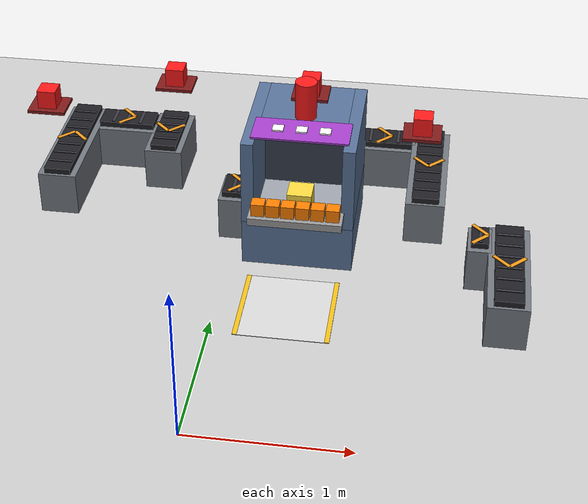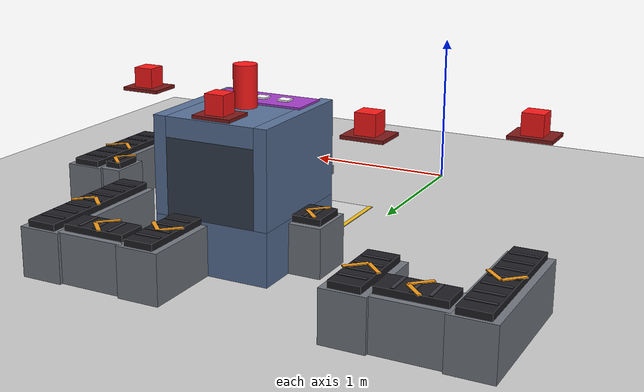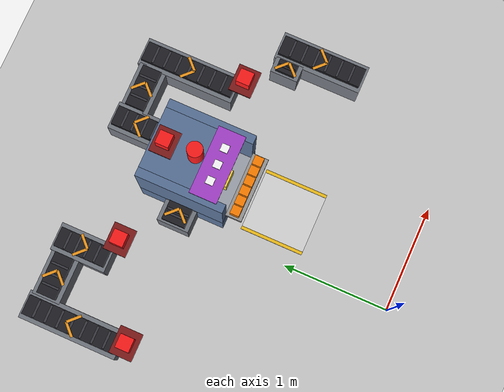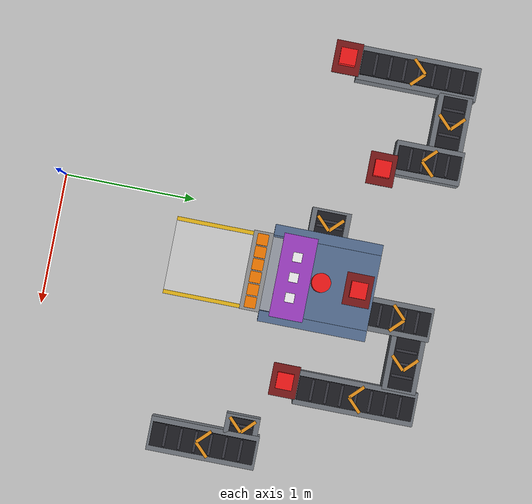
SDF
<sdf version="1.6">
 <world name="factory">
  <include><uri>model://sun</uri></include>
  <include><uri>model://ground_plane</uri></include>
  <model name="M3">
   <static>true</static>
   <pose>0.45 1.2 0 0 0 1.570796</pose>
   <link name="base">
    <visual name="pad">
     <pose>0 0 0.002 0 0 0</pose>
     <geometry><box><size>0.6 0.6 0.004</size></box></geometry>
     <material>
      <ambient>0.85 0.85 0.85 1</ambient>
      <diffuse>0.85 0.85 0.85 1</diffuse>
      <specular>0.1 0.1 0.1 1</specular>
     </material>
    </visual>
    <visual name="pad_edge_l">
     <pose>0 0.285 0.003 0 0 0</pose>
     <geometry><box><size>0.6 0.03 0.006</size></box></geometry>
     <material>
      <ambient>0.95 0.75 0.1 1</ambient>
      <diffuse>0.95 0.75 0.1 1</diffuse>
      <specular>0.1 0.1 0.1 1</specular>
     </material>
    </visual>
    <visual name="pad_edge_r">
     <pose>0 -0.285 0.003 0 0 0</pose>
     <geometry><box><size>0.6 0.03 0.006</size></box></geometry>
     <material>
      <ambient>0.95 0.75 0.1 1</ambient>
      <diffuse>0.95 0.75 0.1 1</diffuse>
      <specular>0.1 0.1 0.1 1</specular>
     </material>
    </visual>
    <visual name="body_floor">
     <pose>0.85 0 0.16 0 0 0</pose>
     <geometry><box><size>0.8 0.72 0.32</size></box></geometry>
     <material>
      <ambient>0.35 0.45 0.6 1</ambient>
      <diffuse>0.35 0.45 0.6 1</diffuse>
      <specular>0.1 0.1 0.1 1</specular>
     </material>
    </visual>
    <visual name="body_wall_l">
     <pose>0.85 0.32 0.61 0 0 0</pose>
     <geometry><box><size>0.8 0.07999999999999996 0.5800000000000001</size></box></geometry>
     <material>
      <ambient>0.35 0.45 0.6 1</ambient>
      <diffuse>0.35 0.45 0.6 1</diffuse>
      <specular>0.1 0.1 0.1 1</specular>
     </material>
    </visual>
    <visual name="body_wall_r">
     <pose>0.85 -0.32 0.61 0 0 0</pose>
     <geometry><box><size>0.8 0.07999999999999996 0.5800000000000001</size></box></geometry>
     <material>
      <ambient>0.35 0.45 0.6 1</ambient>
      <diffuse>0.35 0.45 0.6 1</diffuse>
      <specular>0.1 0.1 0.1 1</specular>
     </material>
    </visual>
    <visual name="body_roof">
     <pose>1.0 0 0.8400000000000001 0 0 0</pose>
     <geometry><box><size>0.5 0.56 0.12</size></box></geometry>
     <material>
      <ambient>0.35 0.45 0.6 1</ambient>
      <diffuse>0.35 0.45 0.6 1</diffuse>
      <specular>0.1 0.1 0.1 1</specular>
     </material>
    </visual>
    <visual name="body_back">
     <pose>1.1 0 0.55 0 0 0</pose>
     <geometry><box><size>0.30000000000000004 0.56 0.46</size></box></geometry>
     <material>
      <ambient>0.2 0.24 0.3 1</ambient>
      <diffuse>0.2 0.24 0.3 1</diffuse>
      <specular>0.1 0.1 0.1 1</specular>
     </material>
    </visual>
    <visual name="bench">
     <pose>0.7 0 0.325 0 0 0</pose>
     <geometry><box><size>0.5 0.56 0.01</size></box></geometry>
     <material>
      <ambient>0.62 0.64 0.68 1</ambient>
      <diffuse>0.62 0.64 0.68 1</diffuse>
      <specular>0.1 0.1 0.1 1</specular>
     </material>
    </visual>
    <collision name="body">
     <pose>0.85 0 0.45 0 0 0</pose>
     <geometry><box><size>0.8 0.72 0.9</size></box></geometry>
    </collision>
    <visual name="id_band">
     <pose>0.6499999999999999 0 0.906 0 0 0</pose>
     <geometry><box><size>0.25 0.62 0.012</size></box></geometry>
     <material>
      <ambient>0.65 0.25 0.8 1</ambient>
      <diffuse>0.65 0.25 0.8 1</diffuse>
      <specular>0.1 0.1 0.1 1</specular>
     </material>
    </visual>
    <visual name="id_dot1">
     <pose>0.6499999999999999 -0.15 0.916 0 0 0</pose>
     <geometry><box><size>0.07 0.07 0.012</size></box></geometry>
     <material><ambient>1 1 1 1</ambient><diffuse>1 1 1 1</diffuse><specular>0.1 0.1 0.1 1</specular></material>
    </visual>
    <visual name="id_dot2">
     <pose>0.6499999999999999 0.0 0.916 0 0 0</pose>
     <geometry><box><size>0.07 0.07 0.012</size></box></geometry>
     <material><ambient>1 1 1 1</ambient><diffuse>1 1 1 1</diffuse><specular>0.1 0.1 0.1 1</specular></material>
    </visual>
    <visual name="id_dot3">
     <pose>0.6499999999999999 0.15 0.916 0 0 0</pose>
     <geometry><box><size>0.07 0.07 0.012</size></box></geometry>
     <material><ambient>1 1 1 1</ambient><diffuse>1 1 1 1</diffuse><specular>0.1 0.1 0.1 1</specular></material>
    </visual>
    <visual name="tray">
     <pose>0.37499999999999994 0 0.425 0 0 0</pose>
     <geometry><box><size>0.15 0.6 0.05</size></box></geometry>
     <material>
      <ambient>0.6 0.6 0.6 1</ambient>
      <diffuse>0.6 0.6 0.6 1</diffuse>
      <specular>0.1 0.1 0.1 1</specular>
     </material>
    </visual>
    <collision name="tray">
     <pose>0.37499999999999994 0 0.425 0 0 0</pose>
     <geometry><box><size>0.15 0.6 0.05</size></box></geometry>
    </collision>
   </link>
   <link name="lamp">
    <pose>0.85 0 1.025 0 0 0</pose>
    <visual name="lamp">
     <geometry><cylinder><radius>0.07</radius><length>0.25</length></cylinder></geometry>
     <material>
      <ambient>1 0.1 0.1 1</ambient>
      <diffuse>1 0.1 0.1 1</diffuse>
      <specular>0.1 0.1 0.1 1</specular>
      <emissive>1 0.1 0.1 1</emissive>
     </material>
    </visual>
   </link>
   <link name="work">
    <pose>0.62 0 0.41000000000000003 0 0 0</pose>
    <visual name="work">
     <geometry><box><size>0.16 0.16 0.16</size></box></geometry>
     <material>
      <ambient>0.98 0.85 0.25 1</ambient>
      <diffuse>0.98 0.85 0.25 1</diffuse>
      <specular>0.1 0.1 0.1 1</specular>
     </material>
    </visual>
   </link>
   <link name="stock">
    <visual name="s0">
     <pose>0.37499999999999994 0.2375 0.4925 0 0 0</pose>
     <geometry><box><size>0.085 0.085 0.085</size></box></geometry>
     <material>
      <ambient>1 0.5 0 1</ambient>
      <diffuse>1 0.5 0 1</diffuse>
      <specular>0.1 0.1 0.1 1</specular>
     </material>
    </visual>
    <visual name="s1">
     <pose>0.37499999999999994 0.14250000000000002 0.4925 0 0 0</pose>
     <geometry><box><size>0.085 0.085 0.085</size></box></geometry>
     <material>
      <ambient>1 0.5 0 1</ambient>
      <diffuse>1 0.5 0 1</diffuse>
      <specular>0.1 0.1 0.1 1</specular>
     </material>
    </visual>
    <visual name="s2">
     <pose>0.37499999999999994 0.0475 0.4925 0 0 0</pose>
     <geometry><box><size>0.085 0.085 0.085</size></box></geometry>
     <material>
      <ambient>1 0.5 0 1</ambient>
      <diffuse>1 0.5 0 1</diffuse>
      <specular>0.1 0.1 0.1 1</specular>
     </material>
    </visual>
    <visual name="s3">
     <pose>0.37499999999999994 -0.0475 0.4925 0 0 0</pose>
     <geometry><box><size>0.085 0.085 0.085</size></box></geometry>
     <material>
      <ambient>1 0.5 0 1</ambient>
      <diffuse>1 0.5 0 1</diffuse>
      <specular>0.1 0.1 0.1 1</specular>
     </material>
    </visual>
    <visual name="s4">
     <pose>0.37499999999999994 -0.14250000000000002 0.4925 0 0 0</pose>
     <geometry><box><size>0.085 0.085 0.085</size></box></geometry>
     <material>
      <ambient>1 0.5 0 1</ambient>
      <diffuse>1 0.5 0 1</diffuse>
      <specular>0.1 0.1 0.1 1</specular>
     </material>
    </visual>
    <visual name="s5">
     <pose>0.37499999999999994 -0.2375 0.4925 0 0 0</pose>
     <geometry><box><size>0.085 0.085 0.085</size></box></geometry>
     <material>
      <ambient>1 0.5 0 1</ambient>
      <diffuse>1 0.5 0 1</diffuse>
      <specular>0.1 0.1 0.1 1</specular>
     </material>
    </visual>
   </link>
  </model>
  <model name="conv_M1_M2_a">
   <static>true</static>
   <pose>-1.25 2.49 0 0 0 1.57080</pose>
   <link name="base">
    <visual name="table">
     <pose>0 0 0.15 0 0 0</pose>
     <geometry><box><size>0.9200000000000004 0.26 0.3</size></box></geometry>
     <material>
      <ambient>0.45 0.47 0.5 1</ambient>
      <diffuse>0.45 0.47 0.5 1</diffuse>
      <specular>0.1 0.1 0.1 1</specular>
     </material>
    </visual>
    <collision name="table">
     <pose>0 0 0.15 0 0 0</pose>
     <geometry><box><size>0.9200000000000004 0.26 0.3</size></box></geometry>
    </collision>
    <visual name="belt">
     <pose>0 0 0.32 0 0 0</pose>
     <geometry><box><size>0.8800000000000003 0.18 0.04</size></box></geometry>
     <material>
      <ambient>0.12 0.12 0.14 1</ambient>
      <diffuse>0.12 0.12 0.14 1</diffuse>
      <specular>0.1 0.1 0.1 1</specular>
     </material>
    </visual>
    <visual name="belt_rib0">
     <pose>-0.33428571428571446 0 0.34199999999999997 0 0 0</pose>
     <geometry><box><size>0.02 0.16 0.004</size></box></geometry>
     <material>
      <ambient>0.22 0.22 0.25 1</ambient>
      <diffuse>0.22 0.22 0.25 1</diffuse>
      <specular>0.1 0.1 0.1 1</specular>
     </material>
    </visual>
    <visual name="belt_rib1">
     <pose>-0.22285714285714298 0 0.34199999999999997 0 0 0</pose>
     <geometry><box><size>0.02 0.16 0.004</size></box></geometry>
     <material>
      <ambient>0.22 0.22 0.25 1</ambient>
      <diffuse>0.22 0.22 0.25 1</diffuse>
      <specular>0.1 0.1 0.1 1</specular>
     </material>
    </visual>
    <visual name="belt_rib2">
     <pose>-0.11142857142857149 0 0.34199999999999997 0 0 0</pose>
     <geometry><box><size>0.02 0.16 0.004</size></box></geometry>
     <material>
      <ambient>0.22 0.22 0.25 1</ambient>
      <diffuse>0.22 0.22 0.25 1</diffuse>
      <specular>0.1 0.1 0.1 1</specular>
     </material>
    </visual>
    <visual name="belt_rib3">
     <pose>0.0 0 0.34199999999999997 0 0 0</pose>
     <geometry><box><size>0.02 0.16 0.004</size></box></geometry>
     <material>
      <ambient>0.22 0.22 0.25 1</ambient>
      <diffuse>0.22 0.22 0.25 1</diffuse>
      <specular>0.1 0.1 0.1 1</specular>
     </material>
    </visual>
    <visual name="belt_rib4">
     <pose>0.11142857142857149 0 0.34199999999999997 0 0 0</pose>
     <geometry><box><size>0.02 0.16 0.004</size></box></geometry>
     <material>
      <ambient>0.22 0.22 0.25 1</ambient>
      <diffuse>0.22 0.22 0.25 1</diffuse>
      <specular>0.1 0.1 0.1 1</specular>
     </material>
    </visual>
    <visual name="belt_rib5">
     <pose>0.22285714285714292 0 0.34199999999999997 0 0 0</pose>
     <geometry><box><size>0.02 0.16 0.004</size></box></geometry>
     <material>
      <ambient>0.22 0.22 0.25 1</ambient>
      <diffuse>0.22 0.22 0.25 1</diffuse>
      <specular>0.1 0.1 0.1 1</specular>
     </material>
    </visual>
    <visual name="belt_rib6">
     <pose>0.33428571428571446 0 0.34199999999999997 0 0 0</pose>
     <geometry><box><size>0.02 0.16 0.004</size></box></geometry>
     <material>
      <ambient>0.22 0.22 0.25 1</ambient>
      <diffuse>0.22 0.22 0.25 1</diffuse>
      <specular>0.1 0.1 0.1 1</specular>
     </material>
    </visual>
    <visual name="flow0_0">
     <pose>0.0 0.05 0.344 0 0 -0.78540</pose>
     <geometry><box><size>0.14 0.025 0.006</size></box></geometry>
     <material>
      <ambient>0.95 0.6 0.1 1</ambient>
      <diffuse>0.95 0.6 0.1 1</diffuse>
      <specular>0.1 0.1 0.1 1</specular>
     </material>
    </visual>
    <visual name="flow0_1">
     <pose>0.0 -0.05 0.344 0 0 0.78540</pose>
     <geometry><box><size>0.14 0.025 0.006</size></box></geometry>
     <material>
      <ambient>0.95 0.6 0.1 1</ambient>
      <diffuse>0.95 0.6 0.1 1</diffuse>
      <specular>0.1 0.1 0.1 1</specular>
     </material>
    </visual>
   </link>
  </model>
  <model name="conv_M1_M2_b">
   <static>true</static>
   <pose>-0.925 2.8000000000000003 0 0 0 0</pose>
   <link name="base">
    <visual name="table">
     <pose>0 0 0.15 0 0 0</pose>
     <geometry><box><size>0.4300000000000001 0.26 0.3</size></box></geometry>
     <material>
      <ambient>0.45 0.47 0.5 1</ambient>
      <diffuse>0.45 0.47 0.5 1</diffuse>
      <specular>0.1 0.1 0.1 1</specular>
     </material>
    </visual>
    <collision name="table">
     <pose>0 0 0.15 0 0 0</pose>
     <geometry><box><size>0.4300000000000001 0.26 0.3</size></box></geometry>
    </collision>
    <visual name="belt">
     <pose>0 0 0.32 0 0 0</pose>
     <geometry><box><size>0.3900000000000001 0.18 0.04</size></box></geometry>
     <material>
      <ambient>0.12 0.12 0.14 1</ambient>
      <diffuse>0.12 0.12 0.14 1</diffuse>
      <specular>0.1 0.1 0.1 1</specular>
     </material>
    </visual>
    <visual name="belt_rib0">
     <pose>-0.09666666666666672 0 0.34199999999999997 0 0 0</pose>
     <geometry><box><size>0.02 0.16 0.004</size></box></geometry>
     <material>
      <ambient>0.22 0.22 0.25 1</ambient>
      <diffuse>0.22 0.22 0.25 1</diffuse>
      <specular>0.1 0.1 0.1 1</specular>
     </material>
    </visual>
    <visual name="belt_rib1">
     <pose>0.0 0 0.34199999999999997 0 0 0</pose>
     <geometry><box><size>0.02 0.16 0.004</size></box></geometry>
     <material>
      <ambient>0.22 0.22 0.25 1</ambient>
      <diffuse>0.22 0.22 0.25 1</diffuse>
      <specular>0.1 0.1 0.1 1</specular>
     </material>
    </visual>
    <visual name="belt_rib2">
     <pose>0.09666666666666673 0 0.34199999999999997 0 0 0</pose>
     <geometry><box><size>0.02 0.16 0.004</size></box></geometry>
     <material>
      <ambient>0.22 0.22 0.25 1</ambient>
      <diffuse>0.22 0.22 0.25 1</diffuse>
      <specular>0.1 0.1 0.1 1</specular>
     </material>
    </visual>
    <visual name="flow0_0">
     <pose>0.0 0.05 0.344 0 0 -0.78540</pose>
     <geometry><box><size>0.14 0.025 0.006</size></box></geometry>
     <material>
      <ambient>0.95 0.6 0.1 1</ambient>
      <diffuse>0.95 0.6 0.1 1</diffuse>
      <specular>0.1 0.1 0.1 1</specular>
     </material>
    </visual>
    <visual name="flow0_1">
     <pose>0.0 -0.05 0.344 0 0 0.78540</pose>
     <geometry><box><size>0.14 0.025 0.006</size></box></geometry>
     <material>
      <ambient>0.95 0.6 0.1 1</ambient>
      <diffuse>0.95 0.6 0.1 1</diffuse>
      <specular>0.1 0.1 0.1 1</specular>
     </material>
    </visual>
   </link>
  </model>
  <model name="conv_M1_M2_c">
   <static>true</static>
   <pose>-0.6 2.6900000000000004 0 0 0 -1.57080</pose>
   <link name="base">
    <visual name="table">
     <pose>0 0 0.15 0 0 0</pose>
     <geometry><box><size>0.52 0.26 0.3</size></box></geometry>
     <material>
      <ambient>0.45 0.47 0.5 1</ambient>
      <diffuse>0.45 0.47 0.5 1</diffuse>
      <specular>0.1 0.1 0.1 1</specular>
     </material>
    </visual>
    <collision name="table">
     <pose>0 0 0.15 0 0 0</pose>
     <geometry><box><size>0.52 0.26 0.3</size></box></geometry>
    </collision>
    <visual name="belt">
     <pose>0 0 0.32 0 0 0</pose>
     <geometry><box><size>0.48000000000000004 0.18 0.04</size></box></geometry>
     <material>
      <ambient>0.12 0.12 0.14 1</ambient>
      <diffuse>0.12 0.12 0.14 1</diffuse>
      <specular>0.1 0.1 0.1 1</specular>
     </material>
    </visual>
    <visual name="belt_rib0">
     <pose>-0.14250000000000002 0 0.34199999999999997 0 0 0</pose>
     <geometry><box><size>0.02 0.16 0.004</size></box></geometry>
     <material>
      <ambient>0.22 0.22 0.25 1</ambient>
      <diffuse>0.22 0.22 0.25 1</diffuse>
      <specular>0.1 0.1 0.1 1</specular>
     </material>
    </visual>
    <visual name="belt_rib1">
     <pose>-0.04749999999999999 0 0.34199999999999997 0 0 0</pose>
     <geometry><box><size>0.02 0.16 0.004</size></box></geometry>
     <material>
      <ambient>0.22 0.22 0.25 1</ambient>
      <diffuse>0.22 0.22 0.25 1</diffuse>
      <specular>0.1 0.1 0.1 1</specular>
     </material>
    </visual>
    <visual name="belt_rib2">
     <pose>0.04749999999999999 0 0.34199999999999997 0 0 0</pose>
     <geometry><box><size>0.02 0.16 0.004</size></box></geometry>
     <material>
      <ambient>0.22 0.22 0.25 1</ambient>
      <diffuse>0.22 0.22 0.25 1</diffuse>
      <specular>0.1 0.1 0.1 1</specular>
     </material>
    </visual>
    <visual name="belt_rib3">
     <pose>0.14250000000000002 0 0.34199999999999997 0 0 0</pose>
     <geometry><box><size>0.02 0.16 0.004</size></box></geometry>
     <material>
      <ambient>0.22 0.22 0.25 1</ambient>
      <diffuse>0.22 0.22 0.25 1</diffuse>
      <specular>0.1 0.1 0.1 1</specular>
     </material>
    </visual>
    <visual name="flow0_0">
     <pose>0.0 0.05 0.344 0 0 -0.78540</pose>
     <geometry><box><size>0.14 0.025 0.006</size></box></geometry>
     <material>
      <ambient>0.95 0.6 0.1 1</ambient>
      <diffuse>0.95 0.6 0.1 1</diffuse>
      <specular>0.1 0.1 0.1 1</specular>
     </material>
    </visual>
    <visual name="flow0_1">
     <pose>0.0 -0.05 0.344 0 0 0.78540</pose>
     <geometry><box><size>0.14 0.025 0.006</size></box></geometry>
     <material>
      <ambient>0.95 0.6 0.1 1</ambient>
      <diffuse>0.95 0.6 0.1 1</diffuse>
      <specular>0.1 0.1 0.1 1</specular>
     </material>
    </visual>
   </link>
  </model>
  <model name="conv_M2_M3">
   <static>true</static>
   <pose>0.0 2.0500000000000003 0 0 0 0</pose>
   <link name="base">
    <visual name="table">
     <pose>0 0 0.15 0 0 0</pose>
     <geometry><box><size>0.22000000000000006 0.3 0.3</size></box></geometry>
     <material>
      <ambient>0.45 0.47 0.5 1</ambient>
      <diffuse>0.45 0.47 0.5 1</diffuse>
      <specular>0.1 0.1 0.1 1</specular>
     </material>
    </visual>
    <collision name="table">
     <pose>0 0 0.15 0 0 0</pose>
     <geometry><box><size>0.22000000000000006 0.3 0.3</size></box></geometry>
    </collision>
    <visual name="belt">
     <pose>0 0 0.32 0 0 0</pose>
     <geometry><box><size>0.18000000000000005 0.21999999999999997 0.04</size></box></geometry>
     <material>
      <ambient>0.12 0.12 0.14 1</ambient>
      <diffuse>0.12 0.12 0.14 1</diffuse>
      <specular>0.1 0.1 0.1 1</specular>
     </material>
    </visual>
    <visual name="belt_rib0">
     <pose>-0.02000000000000001 0 0.34199999999999997 0 0 0</pose>
     <geometry><box><size>0.02 0.19999999999999998 0.004</size></box></geometry>
     <material>
      <ambient>0.22 0.22 0.25 1</ambient>
      <diffuse>0.22 0.22 0.25 1</diffuse>
      <specular>0.1 0.1 0.1 1</specular>
     </material>
    </visual>
    <visual name="belt_rib1">
     <pose>0.02000000000000001 0 0.34199999999999997 0 0 0</pose>
     <geometry><box><size>0.02 0.19999999999999998 0.004</size></box></geometry>
     <material>
      <ambient>0.22 0.22 0.25 1</ambient>
      <diffuse>0.22 0.22 0.25 1</diffuse>
      <specular>0.1 0.1 0.1 1</specular>
     </material>
    </visual>
    <visual name="flow0_0">
     <pose>0.0 0.05 0.344 0 0 -0.78540</pose>
     <geometry><box><size>0.14 0.025 0.006</size></box></geometry>
     <material>
      <ambient>0.95 0.6 0.1 1</ambient>
      <diffuse>0.95 0.6 0.1 1</diffuse>
      <specular>0.1 0.1 0.1 1</specular>
     </material>
    </visual>
    <visual name="flow0_1">
     <pose>0.0 -0.05 0.344 0 0 0.78540</pose>
     <geometry><box><size>0.14 0.025 0.006</size></box></geometry>
     <material>
      <ambient>0.95 0.6 0.1 1</ambient>
      <diffuse>0.95 0.6 0.1 1</diffuse>
      <specular>0.1 0.1 0.1 1</specular>
     </material>
    </visual>
   </link>
  </model>
  <model name="conv_M3_M4_a">
   <static>true</static>
   <pose>0.6 2.6900000000000004 0 0 0 1.57080</pose>
   <link name="base">
    <visual name="table">
     <pose>0 0 0.15 0 0 0</pose>
     <geometry><box><size>0.52 0.26 0.3</size></box></geometry>
     <material>
      <ambient>0.45 0.47 0.5 1</ambient>
      <diffuse>0.45 0.47 0.5 1</diffuse>
      <specular>0.1 0.1 0.1 1</specular>
     </material>
    </visual>
    <collision name="table">
     <pose>0 0 0.15 0 0 0</pose>
     <geometry><box><size>0.52 0.26 0.3</size></box></geometry>
    </collision>
    <visual name="belt">
     <pose>0 0 0.32 0 0 0</pose>
     <geometry><box><size>0.48000000000000004 0.18 0.04</size></box></geometry>
     <material>
      <ambient>0.12 0.12 0.14 1</ambient>
      <diffuse>0.12 0.12 0.14 1</diffuse>
      <specular>0.1 0.1 0.1 1</specular>
     </material>
    </visual>
    <visual name="belt_rib0">
     <pose>-0.14250000000000002 0 0.34199999999999997 0 0 0</pose>
     <geometry><box><size>0.02 0.16 0.004</size></box></geometry>
     <material>
      <ambient>0.22 0.22 0.25 1</ambient>
      <diffuse>0.22 0.22 0.25 1</diffuse>
      <specular>0.1 0.1 0.1 1</specular>
     </material>
    </visual>
    <visual name="belt_rib1">
     <pose>-0.04749999999999999 0 0.34199999999999997 0 0 0</pose>
     <geometry><box><size>0.02 0.16 0.004</size></box></geometry>
     <material>
      <ambient>0.22 0.22 0.25 1</ambient>
      <diffuse>0.22 0.22 0.25 1</diffuse>
      <specular>0.1 0.1 0.1 1</specular>
     </material>
    </visual>
    <visual name="belt_rib2">
     <pose>0.04749999999999999 0 0.34199999999999997 0 0 0</pose>
     <geometry><box><size>0.02 0.16 0.004</size></box></geometry>
     <material>
      <ambient>0.22 0.22 0.25 1</ambient>
      <diffuse>0.22 0.22 0.25 1</diffuse>
      <specular>0.1 0.1 0.1 1</specular>
     </material>
    </visual>
    <visual name="belt_rib3">
     <pose>0.14250000000000002 0 0.34199999999999997 0 0 0</pose>
     <geometry><box><size>0.02 0.16 0.004</size></box></geometry>
     <material>
      <ambient>0.22 0.22 0.25 1</ambient>
      <diffuse>0.22 0.22 0.25 1</diffuse>
      <specular>0.1 0.1 0.1 1</specular>
     </material>
    </visual>
    <visual name="flow0_0">
     <pose>0.0 0.05 0.344 0 0 -0.78540</pose>
     <geometry><box><size>0.14 0.025 0.006</size></box></geometry>
     <material>
      <ambient>0.95 0.6 0.1 1</ambient>
      <diffuse>0.95 0.6 0.1 1</diffuse>
      <specular>0.1 0.1 0.1 1</specular>
     </material>
    </visual>
    <visual name="flow0_1">
     <pose>0.0 -0.05 0.344 0 0 0.78540</pose>
     <geometry><box><size>0.14 0.025 0.006</size></box></geometry>
     <material>
      <ambient>0.95 0.6 0.1 1</ambient>
      <diffuse>0.95 0.6 0.1 1</diffuse>
      <specular>0.1 0.1 0.1 1</specular>
     </material>
    </visual>
   </link>
  </model>
  <model name="conv_M3_M4_b">
   <static>true</static>
   <pose>0.925 2.8000000000000003 0 0 0 0</pose>
   <link name="base">
    <visual name="table">
     <pose>0 0 0.15 0 0 0</pose>
     <geometry><box><size>0.4300000000000001 0.26 0.3</size></box></geometry>
     <material>
      <ambient>0.45 0.47 0.5 1</ambient>
      <diffuse>0.45 0.47 0.5 1</diffuse>
      <specular>0.1 0.1 0.1 1</specular>
     </material>
    </visual>
    <collision name="table">
     <pose>0 0 0.15 0 0 0</pose>
     <geometry><box><size>0.4300000000000001 0.26 0.3</size></box></geometry>
    </collision>
    <visual name="belt">
     <pose>0 0 0.32 0 0 0</pose>
     <geometry><box><size>0.3900000000000001 0.18 0.04</size></box></geometry>
     <material>
      <ambient>0.12 0.12 0.14 1</ambient>
      <diffuse>0.12 0.12 0.14 1</diffuse>
      <specular>0.1 0.1 0.1 1</specular>
     </material>
    </visual>
    <visual name="belt_rib0">
     <pose>-0.09666666666666672 0 0.34199999999999997 0 0 0</pose>
     <geometry><box><size>0.02 0.16 0.004</size></box></geometry>
     <material>
      <ambient>0.22 0.22 0.25 1</ambient>
      <diffuse>0.22 0.22 0.25 1</diffuse>
      <specular>0.1 0.1 0.1 1</specular>
     </material>
    </visual>
    <visual name="belt_rib1">
     <pose>0.0 0 0.34199999999999997 0 0 0</pose>
     <geometry><box><size>0.02 0.16 0.004</size></box></geometry>
     <material>
      <ambient>0.22 0.22 0.25 1</ambient>
      <diffuse>0.22 0.22 0.25 1</diffuse>
      <specular>0.1 0.1 0.1 1</specular>
     </material>
    </visual>
    <visual name="belt_rib2">
     <pose>0.09666666666666673 0 0.34199999999999997 0 0 0</pose>
     <geometry><box><size>0.02 0.16 0.004</size></box></geometry>
     <material>
      <ambient>0.22 0.22 0.25 1</ambient>
      <diffuse>0.22 0.22 0.25 1</diffuse>
      <specular>0.1 0.1 0.1 1</specular>
     </material>
    </visual>
    <visual name="flow0_0">
     <pose>0.0 0.05 0.344 0 0 -0.78540</pose>
     <geometry><box><size>0.14 0.025 0.006</size></box></geometry>
     <material>
      <ambient>0.95 0.6 0.1 1</ambient>
      <diffuse>0.95 0.6 0.1 1</diffuse>
      <specular>0.1 0.1 0.1 1</specular>
     </material>
    </visual>
    <visual name="flow0_1">
     <pose>0.0 -0.05 0.344 0 0 0.78540</pose>
     <geometry><box><size>0.14 0.025 0.006</size></box></geometry>
     <material>
      <ambient>0.95 0.6 0.1 1</ambient>
      <diffuse>0.95 0.6 0.1 1</diffuse>
      <specular>0.1 0.1 0.1 1</specular>
     </material>
    </visual>
   </link>
  </model>
  <model name="conv_M3_M4_c">
   <static>true</static>
   <pose>1.25 2.49 0 0 0 -1.57080</pose>
   <link name="base">
    <visual name="table">
     <pose>0 0 0.15 0 0 0</pose>
     <geometry><box><size>0.9200000000000004 0.26 0.3</size></box></geometry>
     <material>
      <ambient>0.45 0.47 0.5 1</ambient>
      <diffuse>0.45 0.47 0.5 1</diffuse>
      <specular>0.1 0.1 0.1 1</specular>
     </material>
    </visual>
    <collision name="table">
     <pose>0 0 0.15 0 0 0</pose>
     <geometry><box><size>0.9200000000000004 0.26 0.3</size></box></geometry>
    </collision>
    <visual name="belt">
     <pose>0 0 0.32 0 0 0</pose>
     <geometry><box><size>0.8800000000000003 0.18 0.04</size></box></geometry>
     <material>
      <ambient>0.12 0.12 0.14 1</ambient>
      <diffuse>0.12 0.12 0.14 1</diffuse>
      <specular>0.1 0.1 0.1 1</specular>
     </material>
    </visual>
    <visual name="belt_rib0">
     <pose>-0.33428571428571446 0 0.34199999999999997 0 0 0</pose>
     <geometry><box><size>0.02 0.16 0.004</size></box></geometry>
     <material>
      <ambient>0.22 0.22 0.25 1</ambient>
      <diffuse>0.22 0.22 0.25 1</diffuse>
      <specular>0.1 0.1 0.1 1</specular>
     </material>
    </visual>
    <visual name="belt_rib1">
     <pose>-0.22285714285714298 0 0.34199999999999997 0 0 0</pose>
     <geometry><box><size>0.02 0.16 0.004</size></box></geometry>
     <material>
      <ambient>0.22 0.22 0.25 1</ambient>
      <diffuse>0.22 0.22 0.25 1</diffuse>
      <specular>0.1 0.1 0.1 1</specular>
     </material>
    </visual>
    <visual name="belt_rib2">
     <pose>-0.11142857142857149 0 0.34199999999999997 0 0 0</pose>
     <geometry><box><size>0.02 0.16 0.004</size></box></geometry>
     <material>
      <ambient>0.22 0.22 0.25 1</ambient>
      <diffuse>0.22 0.22 0.25 1</diffuse>
      <specular>0.1 0.1 0.1 1</specular>
     </material>
    </visual>
    <visual name="belt_rib3">
     <pose>0.0 0 0.34199999999999997 0 0 0</pose>
     <geometry><box><size>0.02 0.16 0.004</size></box></geometry>
     <material>
      <ambient>0.22 0.22 0.25 1</ambient>
      <diffuse>0.22 0.22 0.25 1</diffuse>
      <specular>0.1 0.1 0.1 1</specular>
     </material>
    </visual>
    <visual name="belt_rib4">
     <pose>0.11142857142857149 0 0.34199999999999997 0 0 0</pose>
     <geometry><box><size>0.02 0.16 0.004</size></box></geometry>
     <material>
      <ambient>0.22 0.22 0.25 1</ambient>
      <diffuse>0.22 0.22 0.25 1</diffuse>
      <specular>0.1 0.1 0.1 1</specular>
     </material>
    </visual>
    <visual name="belt_rib5">
     <pose>0.22285714285714292 0 0.34199999999999997 0 0 0</pose>
     <geometry><box><size>0.02 0.16 0.004</size></box></geometry>
     <material>
      <ambient>0.22 0.22 0.25 1</ambient>
      <diffuse>0.22 0.22 0.25 1</diffuse>
      <specular>0.1 0.1 0.1 1</specular>
     </material>
    </visual>
    <visual name="belt_rib6">
     <pose>0.33428571428571446 0 0.34199999999999997 0 0 0</pose>
     <geometry><box><size>0.02 0.16 0.004</size></box></geometry>
     <material>
      <ambient>0.22 0.22 0.25 1</ambient>
      <diffuse>0.22 0.22 0.25 1</diffuse>
      <specular>0.1 0.1 0.1 1</specular>
     </material>
    </visual>
    <visual name="flow0_0">
     <pose>0.0 0.05 0.344 0 0 -0.78540</pose>
     <geometry><box><size>0.14 0.025 0.006</size></box></geometry>
     <material>
      <ambient>0.95 0.6 0.1 1</ambient>
      <diffuse>0.95 0.6 0.1 1</diffuse>
      <specular>0.1 0.1 0.1 1</specular>
     </material>
    </visual>
    <visual name="flow0_1">
     <pose>0.0 -0.05 0.344 0 0 0.78540</pose>
     <geometry><box><size>0.14 0.025 0.006</size></box></geometry>
     <material>
      <ambient>0.95 0.6 0.1 1</ambient>
      <diffuse>0.95 0.6 0.1 1</diffuse>
      <specular>0.1 0.1 0.1 1</specular>
     </material>
    </visual>
   </link>
  </model>
  <model name="conv_M4_out_a">
   <static>true</static>
   <pose>1.615 1.69 0 0 0 0</pose>
   <link name="base">
    <visual name="table">
     <pose>0 0 0.15 0 0 0</pose>
     <geometry><box><size>0.14999999999999988 0.26 0.3</size></box></geometry>
     <material>
      <ambient>0.45 0.47 0.5 1</ambient>
      <diffuse>0.45 0.47 0.5 1</diffuse>
      <specular>0.1 0.1 0.1 1</specular>
     </material>
    </visual>
    <collision name="table">
     <pose>0 0 0.15 0 0 0</pose>
     <geometry><box><size>0.14999999999999988 0.26 0.3</size></box></geometry>
    </collision>
    <visual name="belt">
     <pose>0 0 0.32 0 0 0</pose>
     <geometry><box><size>0.10999999999999988 0.18 0.04</size></box></geometry>
     <material>
      <ambient>0.12 0.12 0.14 1</ambient>
      <diffuse>0.12 0.12 0.14 1</diffuse>
      <specular>0.1 0.1 0.1 1</specular>
     </material>
    </visual>
    <visual name="belt_rib0">
     <pose>-0.0024999999999999675 0 0.34199999999999997 0 0 0</pose>
     <geometry><box><size>0.02 0.16 0.004</size></box></geometry>
     <material>
      <ambient>0.22 0.22 0.25 1</ambient>
      <diffuse>0.22 0.22 0.25 1</diffuse>
      <specular>0.1 0.1 0.1 1</specular>
     </material>
    </visual>
    <visual name="belt_rib1">
     <pose>0.0024999999999999675 0 0.34199999999999997 0 0 0</pose>
     <geometry><box><size>0.02 0.16 0.004</size></box></geometry>
     <material>
      <ambient>0.22 0.22 0.25 1</ambient>
      <diffuse>0.22 0.22 0.25 1</diffuse>
      <specular>0.1 0.1 0.1 1</specular>
     </material>
    </visual>
    <visual name="flow0_0">
     <pose>0.0 0.05 0.344 0 0 -0.78540</pose>
     <geometry><box><size>0.14 0.025 0.006</size></box></geometry>
     <material>
      <ambient>0.95 0.6 0.1 1</ambient>
      <diffuse>0.95 0.6 0.1 1</diffuse>
      <specular>0.1 0.1 0.1 1</specular>
     </material>
    </visual>
    <visual name="flow0_1">
     <pose>0.0 -0.05 0.344 0 0 0.78540</pose>
     <geometry><box><size>0.14 0.025 0.006</size></box></geometry>
     <material>
      <ambient>0.95 0.6 0.1 1</ambient>
      <diffuse>0.95 0.6 0.1 1</diffuse>
      <specular>0.1 0.1 0.1 1</specular>
     </material>
    </visual>
   </link>
  </model>
  <model name="conv_M4_out_b">
   <static>true</static>
   <pose>1.7999999999999998 1.4249999999999998 0 0 0 -1.57080</pose>
   <link name="base">
    <visual name="table">
     <pose>0 0 0.15 0 0 0</pose>
     <geometry><box><size>0.8299999999999998 0.26 0.3</size></box></geometry>
     <material>
      <ambient>0.45 0.47 0.5 1</ambient>
      <diffuse>0.45 0.47 0.5 1</diffuse>
      <specular>0.1 0.1 0.1 1</specular>
     </material>
    </visual>
    <collision name="table">
     <pose>0 0 0.15 0 0 0</pose>
     <geometry><box><size>0.8299999999999998 0.26 0.3</size></box></geometry>
    </collision>
    <visual name="belt">
     <pose>0 0 0.32 0 0 0</pose>
     <geometry><box><size>0.7899999999999998 0.18 0.04</size></box></geometry>
     <material>
      <ambient>0.12 0.12 0.14 1</ambient>
      <diffuse>0.12 0.12 0.14 1</diffuse>
      <specular>0.1 0.1 0.1 1</specular>
     </material>
    </visual>
    <visual name="belt_rib0">
     <pose>-0.2874999999999999 0 0.34199999999999997 0 0 0</pose>
     <geometry><box><size>0.02 0.16 0.004</size></box></geometry>
     <material>
      <ambient>0.22 0.22 0.25 1</ambient>
      <diffuse>0.22 0.22 0.25 1</diffuse>
      <specular>0.1 0.1 0.1 1</specular>
     </material>
    </visual>
    <visual name="belt_rib1">
     <pose>-0.17249999999999996 0 0.34199999999999997 0 0 0</pose>
     <geometry><box><size>0.02 0.16 0.004</size></box></geometry>
     <material>
      <ambient>0.22 0.22 0.25 1</ambient>
      <diffuse>0.22 0.22 0.25 1</diffuse>
      <specular>0.1 0.1 0.1 1</specular>
     </material>
    </visual>
    <visual name="belt_rib2">
     <pose>-0.057499999999999996 0 0.34199999999999997 0 0 0</pose>
     <geometry><box><size>0.02 0.16 0.004</size></box></geometry>
     <material>
      <ambient>0.22 0.22 0.25 1</ambient>
      <diffuse>0.22 0.22 0.25 1</diffuse>
      <specular>0.1 0.1 0.1 1</specular>
     </material>
    </visual>
    <visual name="belt_rib3">
     <pose>0.057499999999999996 0 0.34199999999999997 0 0 0</pose>
     <geometry><box><size>0.02 0.16 0.004</size></box></geometry>
     <material>
      <ambient>0.22 0.22 0.25 1</ambient>
      <diffuse>0.22 0.22 0.25 1</diffuse>
      <specular>0.1 0.1 0.1 1</specular>
     </material>
    </visual>
    <visual name="belt_rib4">
     <pose>0.17249999999999993 0 0.34199999999999997 0 0 0</pose>
     <geometry><box><size>0.02 0.16 0.004</size></box></geometry>
     <material>
      <ambient>0.22 0.22 0.25 1</ambient>
      <diffuse>0.22 0.22 0.25 1</diffuse>
      <specular>0.1 0.1 0.1 1</specular>
     </material>
    </visual>
    <visual name="belt_rib5">
     <pose>0.2874999999999999 0 0.34199999999999997 0 0 0</pose>
     <geometry><box><size>0.02 0.16 0.004</size></box></geometry>
     <material>
      <ambient>0.22 0.22 0.25 1</ambient>
      <diffuse>0.22 0.22 0.25 1</diffuse>
      <specular>0.1 0.1 0.1 1</specular>
     </material>
    </visual>
    <visual name="flow0_0">
     <pose>0.0 0.05 0.344 0 0 -0.78540</pose>
     <geometry><box><size>0.14 0.025 0.006</size></box></geometry>
     <material>
      <ambient>0.95 0.6 0.1 1</ambient>
      <diffuse>0.95 0.6 0.1 1</diffuse>
      <specular>0.1 0.1 0.1 1</specular>
     </material>
    </visual>
    <visual name="flow0_1">
     <pose>0.0 -0.05 0.344 0 0 0.78540</pose>
     <geometry><box><size>0.14 0.025 0.006</size></box></geometry>
     <material>
      <ambient>0.95 0.6 0.1 1</ambient>
      <diffuse>0.95 0.6 0.1 1</diffuse>
      <specular>0.1 0.1 0.1 1</specular>
     </material>
    </visual>
   </link>
  </model>
  <model name="ng_tray1">
   <static>true</static>
   <pose>-1.2 1.93 0 0 0 0</pose>
   <link name="base">
    <visual name="tray">
     <pose>0 0 0.91 0 0 0</pose>
     <geometry><box><size>0.24 0.2 0.02</size></box></geometry>
     <material>
      <ambient>0.5 0.1 0.1 1</ambient>
      <diffuse>0.5 0.1 0.1 1</diffuse>
      <specular>0.1 0.1 0.1 1</specular>
     </material>
    </visual>
   </link>
  </model>
  <model name="NG1">
   <static>true</static>
   <pose>-1.2 1.93 0 0 0 0</pose>
   <link name="stock">
    <visual name="s0">
     <pose>0.0 0.0 0.98 0 0 0</pose>
     <geometry><box><size>0.12 0.12 0.12</size></box></geometry>
     <material>
      <ambient>1 0.1 0.1 1</ambient>
      <diffuse>1 0.1 0.1 1</diffuse>
      <specular>0.1 0.1 0.1 1</specular>
     </material>
    </visual>
   </link>
  </model>
  <model name="ng_tray2">
   <static>true</static>
   <pose>-0.45 2.33 0 0 0 0</pose>
   <link name="base">
    <visual name="tray">
     <pose>0 0 0.91 0 0 0</pose>
     <geometry><box><size>0.24 0.2 0.02</size></box></geometry>
     <material>
      <ambient>0.5 0.1 0.1 1</ambient>
      <diffuse>0.5 0.1 0.1 1</diffuse>
      <specular>0.1 0.1 0.1 1</specular>
     </material>
    </visual>
   </link>
  </model>
  <model name="NG2">
   <static>true</static>
   <pose>-0.45 2.33 0 0 0 0</pose>
   <link name="stock">
    <visual name="s0">
     <pose>0.0 0.0 0.98 0 0 0</pose>
     <geometry><box><size>0.12 0.12 0.12</size></box></geometry>
     <material>
      <ambient>1 0.1 0.1 1</ambient>
      <diffuse>1 0.1 0.1 1</diffuse>
      <specular>0.1 0.1 0.1 1</specular>
     </material>
    </visual>
   </link>
  </model>
  <model name="ng_tray3">
   <static>true</static>
   <pose>0.45 2.33 0 0 0 0</pose>
   <link name="base">
    <visual name="tray">
     <pose>0 0 0.91 0 0 0</pose>
     <geometry><box><size>0.24 0.2 0.02</size></box></geometry>
     <material>
      <ambient>0.5 0.1 0.1 1</ambient>
      <diffuse>0.5 0.1 0.1 1</diffuse>
      <specular>0.1 0.1 0.1 1</specular>
     </material>
    </visual>
   </link>
  </model>
  <model name="NG3">
   <static>true</static>
   <pose>0.45 2.33 0 0 0 0</pose>
   <link name="stock">
    <visual name="s0">
     <pose>0.0 0.0 0.98 0 0 0</pose>
     <geometry><box><size>0.12 0.12 0.12</size></box></geometry>
     <material>
      <ambient>1 0.1 0.1 1</ambient>
      <diffuse>1 0.1 0.1 1</diffuse>
      <specular>0.1 0.1 0.1 1</specular>
     </material>
    </visual>
   </link>
  </model>
  <model name="ng_tray4">
   <static>true</static>
   <pose>1.2 1.93 0 0 0 0</pose>
   <link name="base">
    <visual name="tray">
     <pose>0 0 0.91 0 0 0</pose>
     <geometry><box><size>0.24 0.2 0.02</size></box></geometry>
     <material>
      <ambient>0.5 0.1 0.1 1</ambient>
      <diffuse>0.5 0.1 0.1 1</diffuse>
      <specular>0.1 0.1 0.1 1</specular>
     </material>
    </visual>
   </link>
  </model>
  <model name="NG4">
   <static>true</static>
   <pose>1.2 1.93 0 0 0 0</pose>
   <link name="stock">
    <visual name="s0">
     <pose>0.0 0.0 0.98 0 0 0</pose>
     <geometry><box><size>0.12 0.12 0.12</size></box></geometry>
     <material>
      <ambient>1 0.1 0.1 1</ambient>
      <diffuse>1 0.1 0.1 1</diffuse>
      <specular>0.1 0.1 0.1 1</specular>
     </material>
    </visual>
   </link>
  </model>
 </world>
</sdf>
